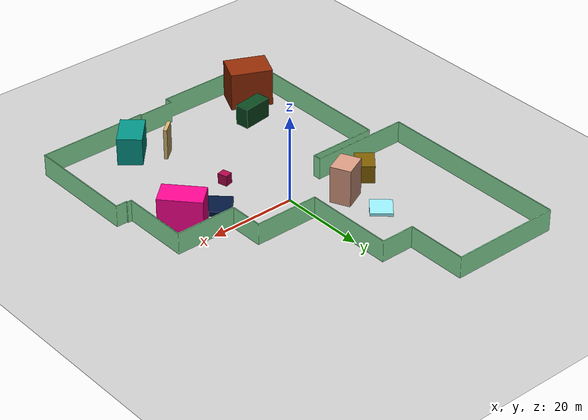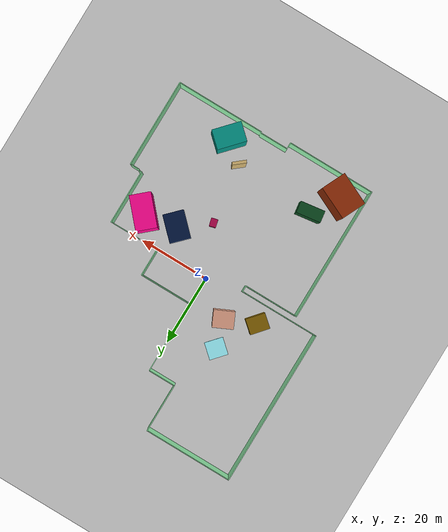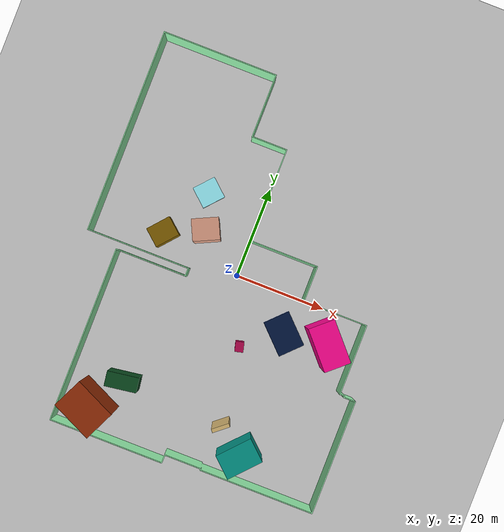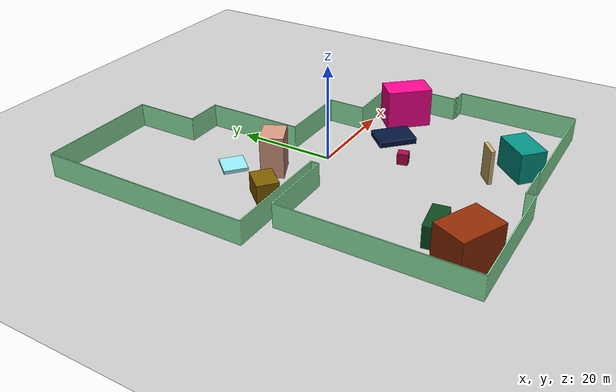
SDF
<?xml version="1.0" ?>
<sdf version="1.6">
  <world name="default">
    <atmosphere type="adiabatic"/>
    <wind>
      <linear_velocity>0 0 0</linear_velocity>
    </wind>
    <physics name="default_physics" default="1" type="ode">
      <max_step_size>0.001</max_step_size>
      <real_time_factor>1.0</real_time_factor>
      <real_time_update_rate>1000.0</real_time_update_rate>
      <max_contacts>20</max_contacts>
      <ode>
        <solver>
          <min_step_size>0.0001</min_step_size>
          <iters>50</iters>
          <sor>1.3</sor>
          <type>quick</type>
          <precon_iters>0</precon_iters>
          <use_dynamic_moi_rescaling>0</use_dynamic_moi_rescaling>
          <friction_model>pyramid_model</friction_model>
        </solver>
        <constraints>
          <cfm>0.0</cfm>
          <erp>0.2</erp>
          <contact_surface_layer>0.001</contact_surface_layer>
          <contact_max_correcting_vel>100.0</contact_max_correcting_vel>
        </constraints>
      </ode>
    </physics>
    <gravity>0 0 -9.8</gravity>
    <model name="box">
      <pose frame="">22.7879 -6.46217 4.20517 0 0 -0.843096</pose>
      <static>1</static>
      <self_collide>0</self_collide>
      <allow_auto_disable>0</allow_auto_disable>
      <link name="link">
        <kinematic>0</kinematic>
        <gravity>1</gravity>
        <self_collide>0</self_collide>
        <collision name="collision">
          <geometry>
            <box>
              <size>9.49544 5.75815 8.41034</size>
            </box>
          </geometry>
          <pose frame="">0 0 0 0 -0 0</pose>
          <max_contacts>20</max_contacts>
        </collision>
        <visual name="visual">
          <geometry>
            <box>
              <size>9.49544 5.75815 8.41034</size>
            </box>
          </geometry>
          <material>
            <ambient>1 0.0156863 0.564706 1</ambient>
            <diffuse>1.0 0.01568627450980392 0.5647058823529412 1</diffuse>
          </material>
          <pose frame="">0 0 0 0 -0 0</pose>
          <cast_shadows>1</cast_shadows>
          <transparency>0.0</transparency>
        </visual>
        <pose frame="">0 0 0 0 -0 0</pose>
      </link>
    </model>
    <model name="box_1">
      <pose frame="">-17.9101 3.0625 2.00842 0 0 -2.27891</pose>
      <static>1</static>
      <self_collide>0</self_collide>
      <allow_auto_disable>0</allow_auto_disable>
      <link name="link">
        <kinematic>0</kinematic>
        <gravity>1</gravity>
        <self_collide>0</self_collide>
        <collision name="collision">
          <geometry>
            <box>
              <size>5.46642 4.3442 4.01684</size>
            </box>
          </geometry>
          <pose frame="">0 0 0 0 -0 0</pose>
          <max_contacts>20</max_contacts>
        </collision>
        <visual name="visual">
          <geometry>
            <box>
              <size>5.46642 4.3442 4.01684</size>
            </box>
          </geometry>
          <material>
            <ambient>0.498039 0.368627 0 1</ambient>
            <diffuse>0.4980392156862745 0.3686274509803922 0.0 1</diffuse>
          </material>
          <pose frame="">0 0 0 0 -0 0</pose>
          <cast_shadows>1</cast_shadows>
          <transparency>0.0</transparency>
        </visual>
        <pose frame="">0 0 0 0 -0 0</pose>
      </link>
    </model>
    <model name="box_2">
      <pose frame="">-19.2754 -36.6631 4.37406 0 -0 1.13489</pose>
      <static>1</static>
      <self_collide>0</self_collide>
      <allow_auto_disable>0</allow_auto_disable>
      <link name="link">
        <kinematic>0</kinematic>
        <gravity>1</gravity>
        <self_collide>0</self_collide>
        <collision name="collision">
          <geometry>
            <box>
              <size>6.94125 9.44325 8.74811</size>
            </box>
          </geometry>
          <pose frame="">0 0 0 0 -0 0</pose>
          <max_contacts>20</max_contacts>
        </collision>
        <visual name="visual">
          <geometry>
            <box>
              <size>6.94125 9.44325 8.74811</size>
            </box>
          </geometry>
          <material>
            <ambient>0.572549 0.168627 0.0196078 1</ambient>
            <diffuse>0.5725490196078431 0.16862745098039217 0.0196078431372549 1</diffuse>
          </material>
          <pose frame="">0 0 0 0 -0 0</pose>
          <cast_shadows>1</cast_shadows>
          <transparency>0.0</transparency>
        </visual>
        <pose frame="">0 0 0 0 -0 0</pose>
      </link>
    </model>
    <model name="box_3">
      <pose frame="">13.8942 -7.93907 0.625205 0 -0 2.36588</pose>
      <static>1</static>
      <self_collide>0</self_collide>
      <allow_auto_disable>0</allow_auto_disable>
      <link name="link">
        <kinematic>0</kinematic>
        <gravity>1</gravity>
        <self_collide>0</self_collide>
        <collision name="collision">
          <geometry>
            <box>
              <size>7.94305 5.88808 1.25041</size>
            </box>
          </geometry>
          <pose frame="">0 0 0 0 -0 0</pose>
          <max_contacts>20</max_contacts>
        </collision>
        <visual name="visual">
          <geometry>
            <box>
              <size>7.94305 5.88808 1.25041</size>
            </box>
          </geometry>
          <material>
            <ambient>0.00392157 0.0823529 0.243137 1</ambient>
            <diffuse>0.00392156862745098 0.08235294117647059 0.24313725490196078 1</diffuse>
          </material>
          <pose frame="">0 0 0 0 -0 0</pose>
          <cast_shadows>1</cast_shadows>
          <transparency>0.0</transparency>
        </visual>
        <pose frame="">0 0 0 0 -0 0</pose>
      </link>
    </model>
    <model name="box_4">
      <pose frame="">-12.1267 14.5522 0.333733 0 0 -2.29384</pose>
      <static>1</static>
      <self_collide>0</self_collide>
      <allow_auto_disable>0</allow_auto_disable>
      <link name="link">
        <kinematic>0</kinematic>
        <gravity>1</gravity>
        <self_collide>0</self_collide>
        <collision name="collision">
          <geometry>
            <box>
              <size>5.22032 4.86197 0.667467</size>
            </box>
          </geometry>
          <pose frame="">0 0 0 0 -0 0</pose>
          <max_contacts>20</max_contacts>
        </collision>
        <visual name="visual">
          <geometry>
            <box>
              <size>5.22032 4.86197 0.667467</size>
            </box>
          </geometry>
          <material>
            <ambient>0.596078 0.937255 0.976471 1</ambient>
            <diffuse>0.596078431372549 0.9372549019607843 0.9764705882352941 1</diffuse>
          </material>
          <pose frame="">0 0 0 0 -0 0</pose>
          <cast_shadows>1</cast_shadows>
          <transparency>0.0</transparency>
        </visual>
        <pose frame="">0 0 0 0 -0 0</pose>
      </link>
    </model>
    <model name="box_5">
      <pose frame="">-9.39013 6.58438 4.28622 0 0 -1.13112</pose>
      <static>1</static>
      <self_collide>0</self_collide>
      <allow_auto_disable>0</allow_auto_disable>
      <link name="link">
        <kinematic>0</kinematic>
        <gravity>1</gravity>
        <self_collide>0</self_collide>
        <collision name="collision">
          <geometry>
            <box>
              <size>4.62932 5.65226 8.57244</size>
            </box>
          </geometry>
          <pose frame="">0 0 0 0 -0 0</pose>
          <max_contacts>20</max_contacts>
        </collision>
        <visual name="visual">
          <geometry>
            <box>
              <size>4.62932 5.65226 8.57244</size>
            </box>
          </geometry>
          <material>
            <ambient>0.85098 0.607843 0.509804 1</ambient>
            <diffuse>0.8509803921568627 0.6078431372549019 0.5098039215686274 1</diffuse>
          </material>
          <pose frame="">0 0 0 0 -0 0</pose>
          <cast_shadows>1</cast_shadows>
          <transparency>0.0</transparency>
        </visual>
        <pose frame="">0 0 0 0 -0 0</pose>
      </link>
    </model>
    <model name="box_6">
      <pose frame="">8.19179 -30.3456 3.56439 0 0 -2.45183</pose>
      <static>1</static>
      <self_collide>0</self_collide>
      <allow_auto_disable>0</allow_auto_disable>
      <link name="link">
        <kinematic>0</kinematic>
        <gravity>1</gravity>
        <self_collide>0</self_collide>
        <collision name="collision">
          <geometry>
            <box>
              <size>3.80271 0.800496 7.12878</size>
            </box>
          </geometry>
          <pose frame="">0 0 0 0 -0 0</pose>
          <max_contacts>20</max_contacts>
        </collision>
        <visual name="visual">
          <geometry>
            <box>
              <size>3.80271 0.800496 7.12878</size>
            </box>
          </geometry>
          <material>
            <ambient>0.819608 0.698039 0.435294 1</ambient>
            <diffuse>0.8196078431372549 0.6980392156862745 0.43529411764705883 1</diffuse>
          </material>
          <pose frame="">0 0 0 0 -0 0</pose>
          <cast_shadows>1</cast_shadows>
          <transparency>0.0</transparency>
        </visual>
        <pose frame="">0 0 0 0 -0 0</pose>
      </link>
    </model>
    <model name="box_7">
      <pose frame="">5.95176 -13.844 1.20145 0 -0 0.245519</pose>
      <static>1</static>
      <self_collide>0</self_collide>
      <allow_auto_disable>0</allow_auto_disable>
      <link name="link">
        <kinematic>0</kinematic>
        <gravity>1</gravity>
        <self_collide>0</self_collide>
        <collision name="collision">
          <geometry>
            <box>
              <size>1.86041 2.23514 2.40289</size>
            </box>
          </geometry>
          <pose frame="">0 0 0 0 -0 0</pose>
          <max_contacts>20</max_contacts>
        </collision>
        <visual name="visual">
          <geometry>
            <box>
              <size>1.86041 2.23514 2.40289</size>
            </box>
          </geometry>
          <material>
            <ambient>0.690196 0.0196078 0.294118 1</ambient>
            <diffuse>0.6901960784313725 0.0196078431372549 0.29411764705882354 1</diffuse>
          </material>
          <pose frame="">0 0 0 0 -0 0</pose>
          <cast_shadows>1</cast_shadows>
          <transparency>0.0</transparency>
        </visual>
        <pose frame="">0 0 0 0 -0 0</pose>
      </link>
    </model>
    <model name="box_8">
      <pose frame="">-14.4591 -29.3954 2.31934 0 0 -1.42802</pose>
      <static>1</static>
      <self_collide>0</self_collide>
      <allow_auto_disable>0</allow_auto_disable>
      <link name="link">
        <kinematic>0</kinematic>
        <gravity>1</gravity>
        <self_collide>0</self_collide>
        <collision name="collision">
          <geometry>
            <box>
              <size>3.257 6.92291 4.63869</size>
            </box>
          </geometry>
          <pose frame="">0 0 0 0 -0 0</pose>
          <max_contacts>20</max_contacts>
        </collision>
        <visual name="visual">
          <geometry>
            <box>
              <size>3.257 6.92291 4.63869</size>
            </box>
          </geometry>
          <material>
            <ambient>0.0392157 0.282353 0.117647 1</ambient>
            <diffuse>0.0392156862745098 0.2823529411764706 0.11764705882352941 1</diffuse>
          </material>
          <pose frame="">0 0 0 0 -0 0</pose>
          <cast_shadows>1</cast_shadows>
          <transparency>0.0</transparency>
        </visual>
        <pose frame="">0 0 0 0 -0 0</pose>
      </link>
    </model>
    <model name="box_9">
      <pose frame="">14.1311 -35.1208 3.17086 0 0 -0.738308</pose>
      <static>1</static>
      <self_collide>0</self_collide>
      <allow_auto_disable>0</allow_auto_disable>
      <link name="link">
        <kinematic>0</kinematic>
        <gravity>1</gravity>
        <self_collide>0</self_collide>
        <collision name="collision">
          <geometry>
            <box>
              <size>5.4473 8.09486 6.34172</size>
            </box>
          </geometry>
          <pose frame="">0 0 0 0 -0 0</pose>
          <max_contacts>20</max_contacts>
        </collision>
        <visual name="visual">
          <geometry>
            <box>
              <size>5.4473 8.09486 6.34172</size>
            </box>
          </geometry>
          <material>
            <ambient>0.00784314 0.576471 0.52549 1</ambient>
            <diffuse>0.00784313725490196 0.5764705882352941 0.5254901960784314 1</diffuse>
          </material>
          <pose frame="">0 0 0 0 -0 0</pose>
          <cast_shadows>1</cast_shadows>
          <transparency>0.0</transparency>
        </visual>
        <pose frame="">0 0 0 0 -0 0</pose>
      </link>
    </model>
    <include>
      <uri>model://test_1_walls</uri>
      <pose frame="">0 0 2.5 0 -0 0</pose>
      <name>test_1_walls</name>
      <static>1</static>
    </include>
    <include>
      <uri>model://ground_plane</uri>
      <pose frame="">0 0 0 0 -0 0</pose>
      <name>ground_plane</name>
      <static>1</static>
    </include>
    <include>
      <uri>model://ground_plane</uri>
    </include>
    <include>
      <uri>model://sun</uri>
    </include>
  </world>
</sdf>

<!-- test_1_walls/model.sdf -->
<sdf version="1.6">
  <model name="test_1_walls">
    <pose frame="">0 0 2.5 0 -0 0</pose>
    <static>1</static>
    <self_collide>0</self_collide>
    <allow_auto_disable>0</allow_auto_disable>
    <link name="mesh">
      <kinematic>0</kinematic>
      <gravity>1</gravity>
      <self_collide>0</self_collide>
      <collision name="collision">
        <geometry>
          <mesh>
            <uri>file:///home/agusmazzeo/Documents/UTN/Proyecto/Frontier-Exploration-with-a-prior/Notebooks/files/models/test_1_walls/meshes/fiItfiqicw.stl</uri>
            <scale>1 1 1</scale>
          </mesh>
        </geometry>
        <pose frame="">4.6407 -5.06212 -2.5 0 -0 0</pose>
        <max_contacts>20</max_contacts>
      </collision>
      <visual name="visual">
        <geometry>
          <mesh>
            <uri>file:///home/agusmazzeo/Documents/UTN/Proyecto/Frontier-Exploration-with-a-prior/Notebooks/files/models/test_1_walls/meshes/GUMoRWRNUq.stl</uri>
            <scale>1 1 1</scale>
          </mesh>
        </geometry>
        <material>
          <ambient>0.596078 0.964706 0.690196 1</ambient>
          <diffuse>0.596078431372549 0.9647058823529412 0.6901960784313725 1</diffuse>
        </material>
        <pose frame="">4.6407 -5.06212 -2.5 0 -0 0</pose>
        <cast_shadows>1</cast_shadows>
        <transparency>0.0</transparency>
      </visual>
      <pose frame="">0 0 0 0 -0 0</pose>
    </link>
  </model>
</sdf>
